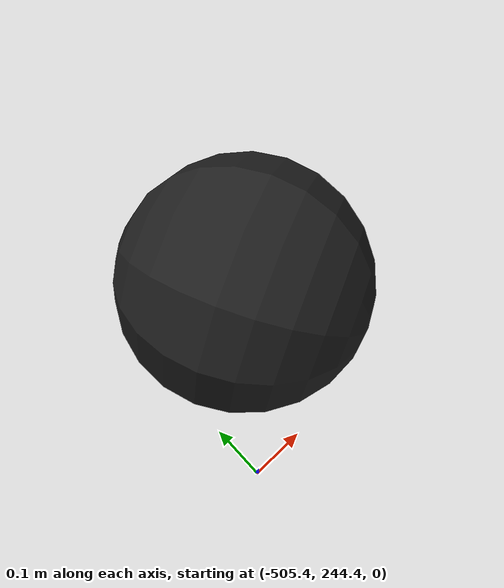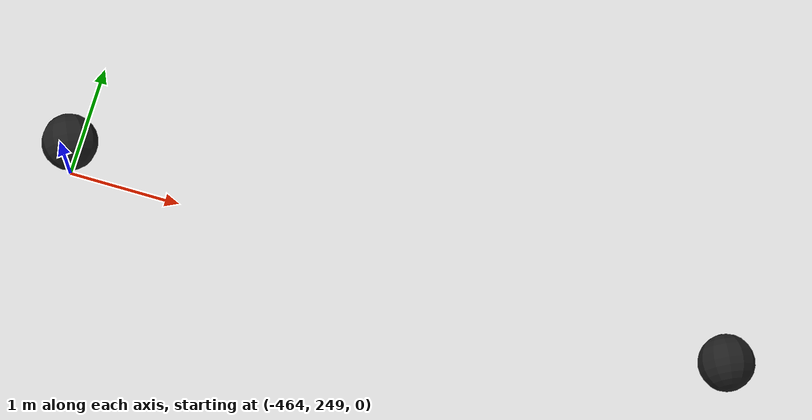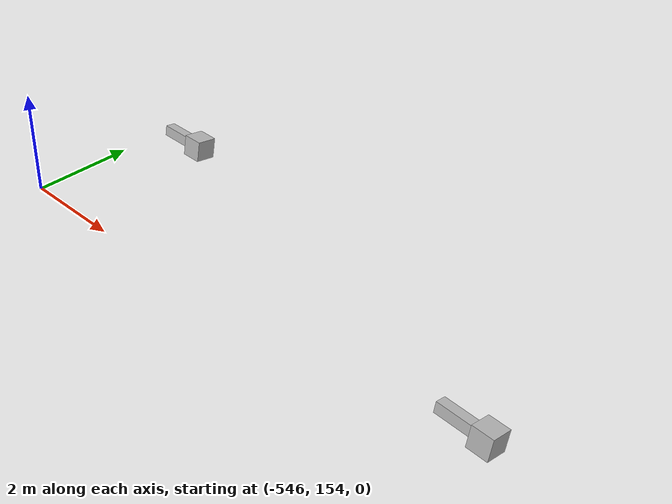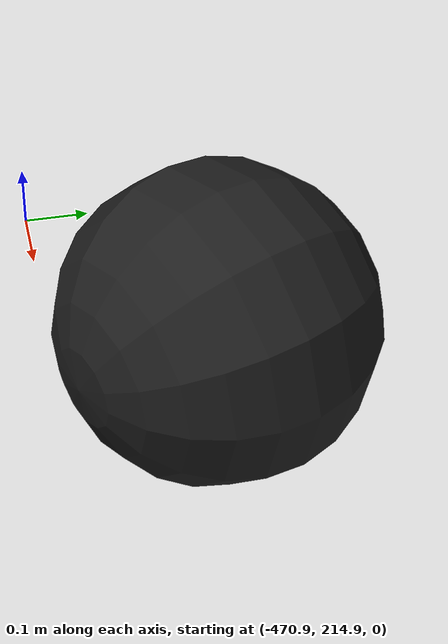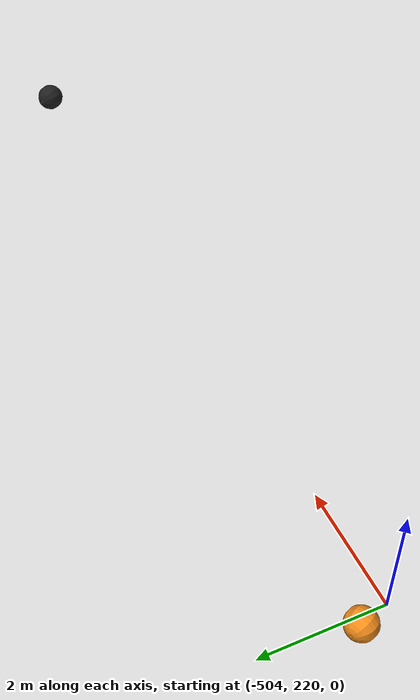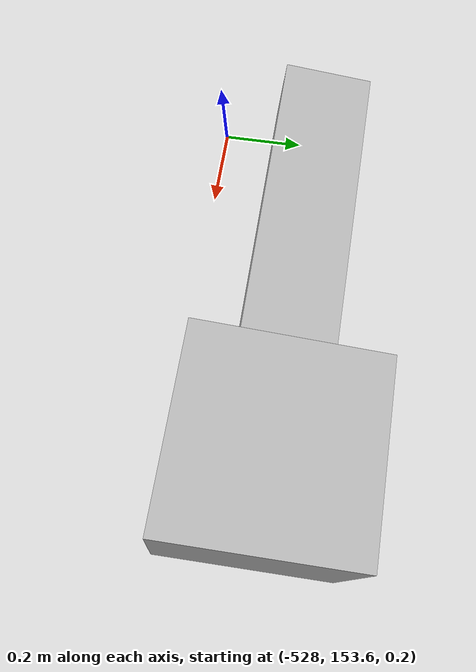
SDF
<sdf version="1.6">
 <world name="robotx_example_course">
  <spherical_coordinates>
   <surface_model>EARTH_WGS84</surface_model>
   <world_frame_orientation>ENU</world_frame_orientation>
   <latitude_deg>-33.724223</latitude_deg>
   <longitude_deg>150.679736</longitude_deg>
   <elevation>0.0</elevation>
   <heading_deg>0.0</heading_deg>
  </spherical_coordinates>
  <include><uri>model://sun</uri></include>
  <include>
   <name>post_0</name>
   <pose>-535.916809 154.362869 0.675884 -0.17182 0.030464 -0.005286</pose>
   <uri>model://post</uri>
  </include>
  <include>
   <name>post_1</name>
   <pose>-527.48999 153.854782 0.425844 -0.1365 0  0</pose>
   <uri>model://post</uri>
  </include>
  <include>
   <name>post_2</name>
   <pose>-544.832825 156.671951 0.499025 -0.162625 0 0</pose>
   <uri>model://post</uri>
  </include>
  <include>
   <name>blue_projectile</name>
   <pose>-545 60 0.03 0 0 0</pose>
   <uri>model://blue_projectile</uri>
  </include>
  <plugin filename="libusv_gazebo_wind_plugin.so" name="wind">
   <wind_obj>
    <name>wamv</name>
    <link_name>wamv/base_link</link_name>
    <coeff_vector>.5 .5 .33</coeff_vector>
   </wind_obj>
   <wind_direction>72</wind_direction>
   <wind_mean_velocity>5.0</wind_mean_velocity>
   <var_wind_gain_constants>4.0</var_wind_gain_constants>
   <var_wind_time_constants>1</var_wind_time_constants>
   <random_seed>7</random_seed>
   <update_rate>10</update_rate>
   <topic_wind_speed>/vrx/debug/wind/speed</topic_wind_speed>
   <topic_wind_direction>/vrx/debug/wind/direction</topic_wind_direction>
  </plugin>
  <scene>
   <sky><clouds><speed>12</speed></clouds></sky>
   <grid>0</grid>
   <origin_visual>0</origin_visual>
   <ambient>0.5 0.5 0.5 1</ambient>
  </scene>
  <include>
   <name>gymkhana_obstacle_course</name>
   <uri>model://obstacle_course1</uri>
   <pose>-500 250 0 0 0 0.44</pose>
  </include>
  <plugin filename="libgymkhana_vrx_scoring_plugin.so" name="gymkhana_scoring_plugin">
   <vehicle>wamv</vehicle>
   <task_name>gymkhana</task_name>
   <task_info_topic>/vrx/task/info</task_info_topic>
   <contact_debug_topic>/vrx/debug/contact</contact_debug_topic>
   <initial_state_duration>10</initial_state_duration>
   <ready_state_duration>10</ready_state_duration>
   <running_state_duration>300</running_state_duration>
   <per_plugin_exit_on_completion>true</per_plugin_exit_on_completion>
   <obstacle_penalty>1</obstacle_penalty>
   <set_position_topic_name>/wamv/sensors/pingers/pinger/set_pinger_position</set_position_topic_name>
   <pinger_position>-495 265 0</pinger_position>
  </plugin>
  <plugin filename="libnavigation_scoring_plugin.so" name="navigation_scoring_plugin">
   <vehicle>wamv</vehicle>
   <task_name>gymkhana_channel</task_name>
   <task_info_topic>/vrx/gymkhana_channel/task/info</task_info_topic>
   <contact_debug_topic>/vrx/gymkhana_channel/debug/contact</contact_debug_topic>
   <per_plugin_exit_on_completion>false</per_plugin_exit_on_completion>
   <initial_state_duration>10</initial_state_duration>
   <ready_state_duration>10</ready_state_duration>
   <running_state_duration>300</running_state_duration>
   <collision_buffer>10</collision_buffer>
   <release_joints>
    <joint><name>wamv_external_pivot_joint</name></joint>
    <joint><name>wamv_external_riser</name></joint>
   </release_joints>
   <course_name>gymkhana_navigation_course</course_name>
   <obstacle_penalty>10.0</obstacle_penalty>
   <gates>
    <gate><left_marker>red_bound_0</left_marker><right_marker>green_bound_0</right_marker></gate>
    <gate><left_marker>red_bound_1</left_marker><right_marker>green_bound_1</right_marker></gate>
    <gate><left_marker>red_bound_2</left_marker><right_marker>green_bound_2</right_marker></gate>
    <gate><left_marker>red_bound_3</left_marker><right_marker>green_bound_3</right_marker></gate>
   </gates>
   <silent>true</silent>
  </plugin>
  <plugin filename="libstationkeeping_scoring_plugin.so" name="stationkeeping_scoring_plugin">
   <vehicle>wamv</vehicle>
   <task_name>gymkhana_blackbox</task_name>
   <mean_error_topic>/vrx/gymkhana_blackbox/mean_pose_error</mean_error_topic>
   <pose_error_topic>/vrx/gymkhana_blackbox/pose_error</pose_error_topic>
   <goal_topic>/vrx/gymkhana_blackbox/goal</goal_topic>
   <task_info_topic>/vrx/gymkhana_blackbox/task/info</task_info_topic>
   <contact_debug_topic>/vrx/gymkhana_blackbox/debug/contact</contact_debug_topic>
   <per_plugin_exit_on_completion>false</per_plugin_exit_on_completion>
   <head_error_on>false</head_error_on>
   <goal_pose_cart>-495 265 0</goal_pose_cart>
   <initial_state_duration>10</initial_state_duration>
   <ready_state_duration>10</ready_state_duration>
   <running_state_duration>300</running_state_duration>
   <release_joints>
    <joint><name>wamv_external_pivot_joint</name></joint>
    <joint><name>wamv_external_riser</name></joint>
   </release_joints>
   <markers><scaling>0.2 0.2 2.0</scaling><height>0.5</height></markers>
   <silent>true</silent>
  </plugin>
 </world>
</sdf>

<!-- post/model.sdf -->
<sdf version="1.6">
  <model name="post">
    <static>true</static>
    <pose>0 0 0 0 0 0</pose>
    <link name="base_link">
      <visual name="visual_1">
        <geometry>
          <box>
            <size>1 0.2 0.2</size>
          </box>
        </geometry>
      </visual>
      <visual name="visual_2">
        <pose>0.4 0 0 0 0 0</pose>
        <geometry>
          <box>
            <size>0.4 0.4 0.4</size>
          </box>
        </geometry>
      </visual>
      <collision name="collision">
        <pose>0 0 0.5 0 0 0</pose>
        <geometry>
          <box>
            <size>1 0.2 1</size>
          </box>
        </geometry>
      </collision>
    </link>
  </model>
</sdf>

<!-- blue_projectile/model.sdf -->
<sdf version="1.6">
  <model name="blue_projectile">
    <link name="link">
      <inertial>
        <mass>0.04</mass>
        <!-- Mark only - based on cylinder -->
        <inertia>
          <ixx>0.00002166</ixx>
          <ixy>0</ixy>
          <ixz>0</ixz>
          <iyy>00002166</iyy>
          <iyz>0</iyz>
          <izz>00002166</izz>
        </inertia>
      </inertial>
      <collision name="collision">
        <geometry>
          <sphere>
            <radius>0.0285</radius>
          </sphere>
        </geometry>
      </collision>
      <visual name="visual">
        <geometry>
	        <sphere>
            <radius>0.0285</radius>
          </sphere>
        </geometry>
        <material>
          <script>
            <uri>model://blue_projectile/materials/scripts/blue_projectile.material</uri>
            <name>blue_projectile/Blue</name>
          </script>
        </material>
      </visual>
    </link>
    <plugin name="BuoyancyPlugin" filename="libbuoyancy_gazebo_plugin.so">
      <wave_model>ocean_waves</wave_model>
      <fluid_density>1000</fluid_density>
      <fluid_level>0.0</fluid_level>
      <linear_drag>25.0</linear_drag>
      <angular_drag>2.0</angular_drag>
      <buoyancy name="buoyancy_sphere">
        <link_name>link</link_name>
        <pose>0 0 -0.02 0 0 0</pose>
        <geometry>
          <sphere>
            <radius>0.0285</radius>
          </sphere>
        </geometry>
      </buoyancy>
    </plugin>
  </model>
</sdf>

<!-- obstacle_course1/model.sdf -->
<!-- automatically generated by the 'generate_avoid_obstacls_buoys' script -->
<!-- python generate_avoid_obstacles_buoys --surmark46104 0 --L 120 -->
<sdf version="1.6">
  <model name="obstacle_course1">
    <include>
      <name>mb_round_buoy_black_0</name>
      <pose>11.75309579 -44.04348694 0.0 0 0 0 </pose>
      <uri>model://mb_round_buoy_black</uri>
    </include>

    <include>
      <name>mb_round_buoy_black_1</name>
      <pose>-4.38017291 -31.00932693 0.0 0 0 0 </pose>
      <uri>model://mb_round_buoy_black</uri>
    </include>

    <include>
      <name>mb_round_buoy_black_2</name>
      <pose>22.6568676   -0.92141124 0.0 0 0 0 </pose>
      <uri>model://mb_round_buoy_black</uri>
    </include>

    <include>
      <name>mb_round_buoy_black_3</name>
      <pose>44.09486489   5.66663984 0.0 0 0 0 </pose>
      <uri>model://mb_round_buoy_black</uri>
    </include>

    <include>
      <name>mb_round_buoy_black_4</name>
      <pose>32.17463149 -15.94637324 0.0 0 0 0 </pose>
      <uri>model://mb_round_buoy_black</uri>
    </include>

    <include>
      <name>mb_round_buoy_black_5</name>
      <pose>-6.94456804 -2.61300114 0.0 0 0 0 </pose>
      <uri>model://mb_round_buoy_black</uri>
    </include>

    <include>
      <name>mb_round_buoy_black_6</name>
      <pose>-50.40281825 -61.06834745 0.0 0 0 0 </pose>
      <uri>model://mb_round_buoy_black</uri>
    </include>

    <include>
      <name>mb_round_buoy_black_7</name>
      <pose>24.576913737 30.3481238647 0.0 0 0 0 </pose>
      <uri>model://mb_round_buoy_black</uri>
    </include>

    <include>
      <name>mb_round_buoy_black_8</name>
      <pose>37.5737439619 -18.8335819857 0.0 0 0 0 </pose>
      <uri>model://mb_round_buoy_black</uri>
    </include>

    <include>
      <name>mb_round_buoy_black_9</name>
      <pose>-2.49572219989 13.1619102364 0.0 0 0 0 </pose>
      <uri>model://mb_round_buoy_black</uri>
    </include>

    <include>
      <name>mb_round_buoy_orange_0</name>
      <pose>-22.30202998   7.58586649 0.0 0 0 0 </pose>
      <uri>model://mb_round_buoy_orange</uri>
    </include>

    <include>
      <name>mb_round_buoy_orange_1</name>
      <pose>33.86021685  14.50500992 0.0 0 0 0 </pose>
      <uri>model://mb_round_buoy_orange</uri>
    </include>

    <include>
      <name>mb_round_buoy_orange_2</name>
      <pose>-37.1237799886 -55.0780758672 0.0 0 0 0 </pose>
      <uri>model://mb_round_buoy_orange</uri>
    </include>

    <include>
      <name>mb_round_buoy_orange_3</name>
      <pose>-23.77126376  27.34241072 0.0 0 0 0 </pose>
      <uri>model://mb_round_buoy_orange</uri>
    </include>

    <include>
      <name>mb_round_buoy_orange_4</name>
      <pose>-16.29351304 -24.97527506 0.0 0 0 0 </pose>
      <uri>model://mb_round_buoy_orange</uri>
    </include>

  </model>
</sdf>

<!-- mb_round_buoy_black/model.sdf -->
<sdf version="1.6">
  <model name="mb_round_buoy_black">
    <link name="link">
      <inertial>
        <pose>0 0 -2 0 0 0</pose>
        <!-- Mass determined based on buoyancy geometry so object
             floats at mid-point of sphere -->
        <mass>3.5</mass>
        <!-- Mark only - based on cylinder -->
        <inertia>
          <ixx>1.0</ixx>
          <ixy>0</ixy>
          <ixz>0</ixz>
          <iyy>1.0</iyy>
          <iyz>0</iyz>
          <izz>0.1</izz>
        </inertia>
      </inertial>
      <collision name="collision">
        <geometry>
          <sphere>
            <radius>0.25</radius>
          </sphere>
        </geometry>
      </collision>
      <visual name="visual">
        <geometry>
	        <mesh><uri>model://mb_round_buoy_orange/meshes/mb_round_buoy.dae</uri></mesh>
        </geometry>
        <material>
          <script>
            <uri>file://media/materials/scripts/gazebo.material</uri>
            <name>Gazebo/Black</name>
          </script>
        </material>
      </visual>
    </link>
    <plugin name="BuoyancyPlugin" filename="libbuoyancy_gazebo_plugin.so">
      <wave_model>ocean_waves</wave_model>
      <fluid_density>1000</fluid_density>
      <fluid_level>0.0</fluid_level>
      <linear_drag>25.0</linear_drag>
      <angular_drag>2.0</angular_drag>
      <buoyancy name="buoyancy_sphere">
        <link_name>link</link_name>
        <pose>0 0 0.02 0 0 0</pose>
        <geometry>
          <sphere>
            <radius>0.235</radius>
          </sphere>
        </geometry>
      </buoyancy>
    </plugin>
  </model>
</sdf>

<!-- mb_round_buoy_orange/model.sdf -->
<sdf version="1.6">
  <model name="mb_round_buoy_orange">
    <link name="link">
      <inertial>
        <pose>0 0 -2 0 0 0</pose>
        <!-- Mass determined based on buoyancy geometry so object
             floats at mid-point of sphere -->
        <mass>3.5</mass>
        <!-- Mark only - based on cylinder -->
        <inertia>
          <ixx>1.0</ixx>
          <ixy>0</ixy>
          <ixz>0</ixz>
          <iyy>1.0</iyy>
          <iyz>0</iyz>
          <izz>0.1</izz>
        </inertia>
      </inertial>
      <collision name="collision">
        <geometry>
          <sphere>
            <radius>0.25</radius>
          </sphere>
        </geometry>
      </collision>
      <visual name="visual">
        <geometry>
	        <mesh><uri>model://mb_round_buoy_orange/meshes/mb_round_buoy.dae</uri></mesh>
        </geometry>
        <material>
          <script>
            <uri>model://mb_round_buoy_orange/materials/scripts/mb_round_buoy.material</uri>
            <name>mb_round_buoy/Orange</name>
          </script>
        </material>
      </visual>
    </link>
    <plugin name="BuoyancyPlugin" filename="libbuoyancy_gazebo_plugin.so">
      <wave_model>ocean_waves</wave_model>
      <fluid_density>1000</fluid_density>
      <fluid_level>0.0</fluid_level>
      <linear_drag>25.0</linear_drag>
      <angular_drag>2.0</angular_drag>
      <buoyancy name="buoyancy_sphere">
        <link_name>link</link_name>
        <pose>0 0 0.02 0 0 0</pose>
        <geometry>
          <sphere>
            <radius>0.235</radius>
          </sphere>
        </geometry>
      </buoyancy>
    </plugin>
  </model>
</sdf>
